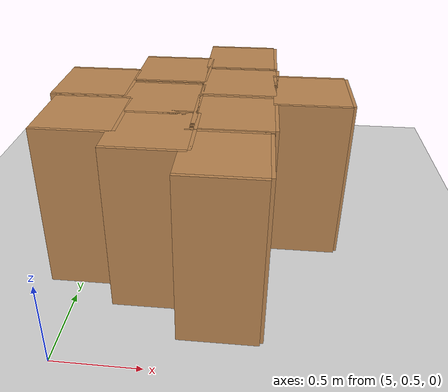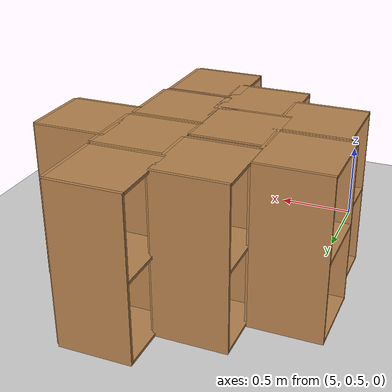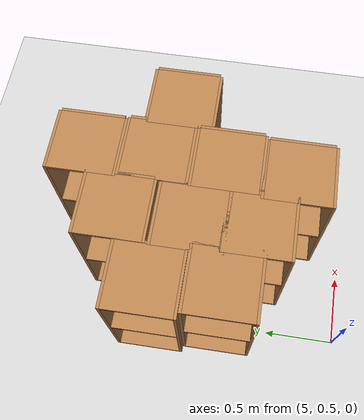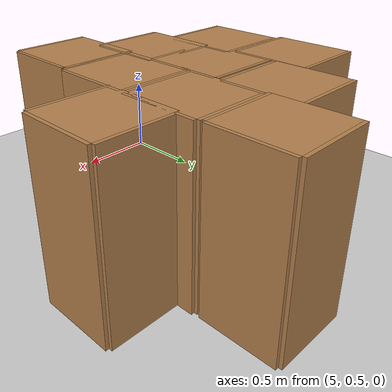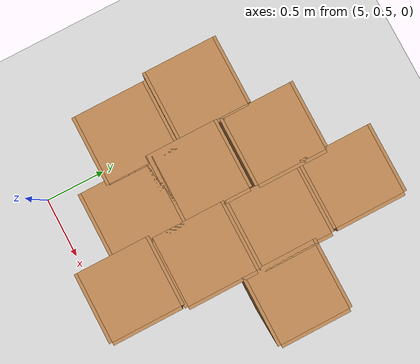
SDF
<sdf version="1.6">
 <world name="default">
  <light name="sun" type="directional">
   <pose>0 0 10 0 -0 0</pose>
   <diffuse>0.8 0.8 0.8 1</diffuse>
   <specular>0.2 0.2 0.2 1</specular>
   <attenuation>
    <range>1000</range>
    <constant>0.9</constant>
    <linear>0.01</linear>
    <quadratic>0.001</quadratic>
   </attenuation>
   <direction>-0.5 0.1 -0.9</direction>
  </light>
  <model name="ground_plane">
   <static>1</static>
   <link name="link">
    <collision name="collision">
     <geometry><plane><normal>0 0 1</normal><size>100 100</size></plane></geometry>
     <surface><friction><ode><mu>100</mu><mu2>50</mu2></ode></friction></surface>
    </collision>
    <visual name="visual">
     <cast_shadows>0</cast_shadows>
     <geometry><plane><normal>0 0 1</normal><size>100 100</size></plane></geometry>
     <material>
      <script><uri>file://media/materials/scripts/gazebo.material</uri><name>Gazebo/Grey</name></script>
     </material>
    </visual>
   </link>
  </model>
  <gravity>0 0 -9.8</gravity>
  <magnetic_field>6e-06 2.3e-05 -4.2e-05</magnetic_field>
  <atmosphere type="adiabatic"/>
  <physics name="default_physics" default="0" type="ode">
   <max_step_size>0.001</max_step_size>
   <real_time_factor>1</real_time_factor>
   <real_time_update_rate>1000</real_time_update_rate>
  </physics>
  <scene><ambient>0.4 0.4 0.4 1</ambient><background>0.7 0.7 0.7 1</background><shadows>1</shadows></scene>
  <audio><device>default</device></audio>
  <spherical_coordinates>
   <surface_model>EARTH_WGS84</surface_model>
   <latitude_deg>0</latitude_deg>
   <longitude_deg>0</longitude_deg>
   <elevation>0</elevation>
   <heading_deg>0</heading_deg>
  </spherical_coordinates>
  <model name="cabinet">
   <static>1</static>
   <link name="cabinet_bottom_plate">
    <inertial>
     <pose>0 0 -1 0 -0 0</pose>
     <inertia><ixx>2.05</ixx><ixy>0</ixy><ixz>0</ixz><iyy>2.05</iyy><iyz>0</iyz><izz>2.05</izz></inertia>
     <mass>25</mass>
    </inertial>
    <collision name="cabinet_bottom_plate_geom">
     <pose>0 0 0.01 0 -0 0</pose>
     <geometry><box><size>0.45 0.45 0.02</size></box></geometry>
    </collision>
    <visual name="cabinet_bottom_plate_geom_visual">
     <pose>0 0 0.01 0 -0 0</pose>
     <geometry><box><size>0.45 0.45 0.02</size></box></geometry>
     <material>
      <script><uri>file://media/materials/scripts/gazebo.material</uri><name>Gazebo/Wood</name></script>
     </material>
    </visual>
    <collision name="cabinet_bottom_plate_geom_cabinet_back_plate">
     <pose>0.235 0 0.51 0 -0 0</pose>
     <geometry><box><size>0.02 0.45 1.02</size></box></geometry>
    </collision>
    <visual name="cabinet_bottom_plate_geom_cabinet_back_plate_visual">
     <pose>0.235 0 0.51 0 -0 0</pose>
     <geometry><box><size>0.02 0.45 1.02</size></box></geometry>
     <material>
      <script><uri>file://media/materials/scripts/gazebo.material</uri><name>Gazebo/Wood</name></script>
     </material>
    </visual>
    <collision name="cabinet_bottom_plate_geom_cabinet_left_plate">
     <pose>0 0.235 0.51 0 -0 0</pose>
     <geometry><box><size>0.45 0.02 1.02</size></box></geometry>
    </collision>
    <visual name="cabinet_bottom_plate_geom_cabinet_left_plate_visual">
     <pose>0 0.235 0.51 0 -0 0</pose>
     <geometry><box><size>0.45 0.02 1.02</size></box></geometry>
     <material>
      <script><uri>file://media/materials/scripts/gazebo.material</uri><name>Gazebo/Wood</name></script>
     </material>
    </visual>
    <collision name="cabinet_bottom_plate_geom_cabinet_middle_plate">
     <pose>0 0 0.51 0 -0 0</pose>
     <geometry><box><size>0.45 0.45 0.02</size></box></geometry>
    </collision>
    <visual name="cabinet_bottom_plate_geom_cabinet_middle_plate_visual">
     <pose>0 0 0.51 0 -0 0</pose>
     <geometry><box><size>0.45 0.45 0.02</size></box></geometry>
     <material>
      <script><uri>file://media/materials/scripts/gazebo.material</uri><name>Gazebo/Wood</name></script>
     </material>
    </visual>
    <collision name="cabinet_bottom_plate_geom_cabinet_right_plate">
     <pose>0 -0.235 0.51 0 -0 0</pose>
     <geometry><box><size>0.45 0.02 1.02</size></box></geometry>
    </collision>
    <visual name="cabinet_bottom_plate_geom_cabinet_right_plate_visual">
     <pose>0 -0.235 0.51 0 -0 0</pose>
     <geometry><box><size>0.45 0.02 1.02</size></box></geometry>
     <material>
      <script><uri>file://media/materials/scripts/gazebo.material</uri><name>Gazebo/Wood</name></script>
     </material>
    </visual>
    <collision name="cabinet_bottom_plate_geom_cabinet_top_plate">
     <pose>0 0 1.01 0 -0 0</pose>
     <geometry><box><size>0.45 0.45 0.02</size></box></geometry>
    </collision>
    <visual name="cabinet_bottom_plate_geom_cabinet_top_plate_visual">
     <pose>0 0 1.01 0 -0 0</pose>
     <geometry><box><size>0.45 0.45 0.02</size></box></geometry>
     <material>
      <script><uri>file://media/materials/scripts/gazebo.material</uri><name>Gazebo/Wood</name></script>
     </material>
    </visual>
   </link>
   <pose>5.87873 2.41817 0 0 -0 0</pose>
  </model>
  <model name="cabinet_0">
   <static>1</static>
   <link name="cabinet_bottom_plate">
    <inertial>
     <pose>0 0 -1 0 -0 0</pose>
     <inertia><ixx>2.05</ixx><ixy>0</ixy><ixz>0</ixz><iyy>2.05</iyy><iyz>0</iyz><izz>2.05</izz></inertia>
     <mass>25</mass>
    </inertial>
    <collision name="cabinet_bottom_plate_geom">
     <pose>0 0 0.01 0 -0 0</pose>
     <geometry><box><size>0.45 0.45 0.02</size></box></geometry>
    </collision>
    <visual name="cabinet_bottom_plate_geom_visual">
     <pose>0 0 0.01 0 -0 0</pose>
     <geometry><box><size>0.45 0.45 0.02</size></box></geometry>
     <material>
      <script><uri>file://media/materials/scripts/gazebo.material</uri><name>Gazebo/Wood</name></script>
     </material>
    </visual>
    <collision name="cabinet_bottom_plate_geom_cabinet_back_plate">
     <pose>0.235 0 0.51 0 -0 0</pose>
     <geometry><box><size>0.02 0.45 1.02</size></box></geometry>
    </collision>
    <visual name="cabinet_bottom_plate_geom_cabinet_back_plate_visual">
     <pose>0.235 0 0.51 0 -0 0</pose>
     <geometry><box><size>0.02 0.45 1.02</size></box></geometry>
     <material>
      <script><uri>file://media/materials/scripts/gazebo.material</uri><name>Gazebo/Wood</name></script>
     </material>
    </visual>
    <collision name="cabinet_bottom_plate_geom_cabinet_left_plate">
     <pose>0 0.235 0.51 0 -0 0</pose>
     <geometry><box><size>0.45 0.02 1.02</size></box></geometry>
    </collision>
    <visual name="cabinet_bottom_plate_geom_cabinet_left_plate_visual">
     <pose>0 0.235 0.51 0 -0 0</pose>
     <geometry><box><size>0.45 0.02 1.02</size></box></geometry>
     <material>
      <script><uri>file://media/materials/scripts/gazebo.material</uri><name>Gazebo/Wood</name></script>
     </material>
    </visual>
    <collision name="cabinet_bottom_plate_geom_cabinet_middle_plate">
     <pose>0 0 0.51 0 -0 0</pose>
     <geometry><box><size>0.45 0.45 0.02</size></box></geometry>
    </collision>
    <visual name="cabinet_bottom_plate_geom_cabinet_middle_plate_visual">
     <pose>0 0 0.51 0 -0 0</pose>
     <geometry><box><size>0.45 0.45 0.02</size></box></geometry>
     <material>
      <script><uri>file://media/materials/scripts/gazebo.material</uri><name>Gazebo/Wood</name></script>
     </material>
    </visual>
    <collision name="cabinet_bottom_plate_geom_cabinet_right_plate">
     <pose>0 -0.235 0.51 0 -0 0</pose>
     <geometry><box><size>0.45 0.02 1.02</size></box></geometry>
    </collision>
    <visual name="cabinet_bottom_plate_geom_cabinet_right_plate_visual">
     <pose>0 -0.235 0.51 0 -0 0</pose>
     <geometry><box><size>0.45 0.02 1.02</size></box></geometry>
     <material>
      <script><uri>file://media/materials/scripts/gazebo.material</uri><name>Gazebo/Wood</name></script>
     </material>
    </visual>
    <collision name="cabinet_bottom_plate_geom_cabinet_top_plate">
     <pose>0 0 1.01 0 -0 0</pose>
     <geometry><box><size>0.45 0.45 0.02</size></box></geometry>
    </collision>
    <visual name="cabinet_bottom_plate_geom_cabinet_top_plate_visual">
     <pose>0 0 1.01 0 -0 0</pose>
     <geometry><box><size>0.45 0.45 0.02</size></box></geometry>
     <material>
      <script><uri>file://media/materials/scripts/gazebo.material</uri><name>Gazebo/Wood</name></script>
     </material>
    </visual>
   </link>
   <pose>5.89009 1.93042 0 0 -0 0</pose>
  </model>
  <model name="cabinet_1">
   <static>1</static>
   <link name="cabinet_bottom_plate">
    <inertial>
     <pose>0 0 -1 0 -0 0</pose>
     <inertia><ixx>2.05</ixx><ixy>0</ixy><ixz>0</ixz><iyy>2.05</iyy><iyz>0</iyz><izz>2.05</izz></inertia>
     <mass>25</mass>
    </inertial>
    <collision name="cabinet_bottom_plate_geom">
     <pose>0 0 0.01 0 -0 0</pose>
     <geometry><box><size>0.45 0.45 0.02</size></box></geometry>
    </collision>
    <visual name="cabinet_bottom_plate_geom_visual">
     <pose>0 0 0.01 0 -0 0</pose>
     <geometry><box><size>0.45 0.45 0.02</size></box></geometry>
     <material>
      <script><uri>file://media/materials/scripts/gazebo.material</uri><name>Gazebo/Wood</name></script>
     </material>
    </visual>
    <collision name="cabinet_bottom_plate_geom_cabinet_back_plate">
     <pose>0.235 0 0.51 0 -0 0</pose>
     <geometry><box><size>0.02 0.45 1.02</size></box></geometry>
    </collision>
    <visual name="cabinet_bottom_plate_geom_cabinet_back_plate_visual">
     <pose>0.235 0 0.51 0 -0 0</pose>
     <geometry><box><size>0.02 0.45 1.02</size></box></geometry>
     <material>
      <script><uri>file://media/materials/scripts/gazebo.material</uri><name>Gazebo/Wood</name></script>
     </material>
    </visual>
    <collision name="cabinet_bottom_plate_geom_cabinet_left_plate">
     <pose>0 0.235 0.51 0 -0 0</pose>
     <geometry><box><size>0.45 0.02 1.02</size></box></geometry>
    </collision>
    <visual name="cabinet_bottom_plate_geom_cabinet_left_plate_visual">
     <pose>0 0.235 0.51 0 -0 0</pose>
     <geometry><box><size>0.45 0.02 1.02</size></box></geometry>
     <material>
      <script><uri>file://media/materials/scripts/gazebo.material</uri><name>Gazebo/Wood</name></script>
     </material>
    </visual>
    <collision name="cabinet_bottom_plate_geom_cabinet_middle_plate">
     <pose>0 0 0.51 0 -0 0</pose>
     <geometry><box><size>0.45 0.45 0.02</size></box></geometry>
    </collision>
    <visual name="cabinet_bottom_plate_geom_cabinet_middle_plate_visual">
     <pose>0 0 0.51 0 -0 0</pose>
     <geometry><box><size>0.45 0.45 0.02</size></box></geometry>
     <material>
      <script><uri>file://media/materials/scripts/gazebo.material</uri><name>Gazebo/Wood</name></script>
     </material>
    </visual>
    <collision name="cabinet_bottom_plate_geom_cabinet_right_plate">
     <pose>0 -0.235 0.51 0 -0 0</pose>
     <geometry><box><size>0.45 0.02 1.02</size></box></geometry>
    </collision>
    <visual name="cabinet_bottom_plate_geom_cabinet_right_plate_visual">
     <pose>0 -0.235 0.51 0 -0 0</pose>
     <geometry><box><size>0.45 0.02 1.02</size></box></geometry>
     <material>
      <script><uri>file://media/materials/scripts/gazebo.material</uri><name>Gazebo/Wood</name></script>
     </material>
    </visual>
    <collision name="cabinet_bottom_plate_geom_cabinet_top_plate">
     <pose>0 0 1.01 0 -0 0</pose>
     <geometry><box><size>0.45 0.45 0.02</size></box></geometry>
    </collision>
    <visual name="cabinet_bottom_plate_geom_cabinet_top_plate_visual">
     <pose>0 0 1.01 0 -0 0</pose>
     <geometry><box><size>0.45 0.45 0.02</size></box></geometry>
     <material>
      <script><uri>file://media/materials/scripts/gazebo.material</uri><name>Gazebo/Wood</name></script>
     </material>
    </visual>
   </link>
   <pose>5.87973 1.44096 0 0 -0 0</pose>
  </model>
  <model name="cabinet_2">
   <static>1</static>
   <link name="cabinet_bottom_plate">
    <inertial>
     <pose>0 0 -1 0 -0 0</pose>
     <inertia><ixx>2.05</ixx><ixy>0</ixy><ixz>0</ixz><iyy>2.05</iyy><iyz>0</iyz><izz>2.05</izz></inertia>
     <mass>25</mass>
    </inertial>
    <collision name="cabinet_bottom_plate_geom">
     <pose>0 0 0.01 0 -0 0</pose>
     <geometry><box><size>0.45 0.45 0.02</size></box></geometry>
    </collision>
    <visual name="cabinet_bottom_plate_geom_visual">
     <pose>0 0 0.01 0 -0 0</pose>
     <geometry><box><size>0.45 0.45 0.02</size></box></geometry>
     <material>
      <script><uri>file://media/materials/scripts/gazebo.material</uri><name>Gazebo/Wood</name></script>
     </material>
    </visual>
    <collision name="cabinet_bottom_plate_geom_cabinet_back_plate">
     <pose>0.235 0 0.51 0 -0 0</pose>
     <geometry><box><size>0.02 0.45 1.02</size></box></geometry>
    </collision>
    <visual name="cabinet_bottom_plate_geom_cabinet_back_plate_visual">
     <pose>0.235 0 0.51 0 -0 0</pose>
     <geometry><box><size>0.02 0.45 1.02</size></box></geometry>
     <material>
      <script><uri>file://media/materials/scripts/gazebo.material</uri><name>Gazebo/Wood</name></script>
     </material>
    </visual>
    <collision name="cabinet_bottom_plate_geom_cabinet_left_plate">
     <pose>0 0.235 0.51 0 -0 0</pose>
     <geometry><box><size>0.45 0.02 1.02</size></box></geometry>
    </collision>
    <visual name="cabinet_bottom_plate_geom_cabinet_left_plate_visual">
     <pose>0 0.235 0.51 0 -0 0</pose>
     <geometry><box><size>0.45 0.02 1.02</size></box></geometry>
     <material>
      <script><uri>file://media/materials/scripts/gazebo.material</uri><name>Gazebo/Wood</name></script>
     </material>
    </visual>
    <collision name="cabinet_bottom_plate_geom_cabinet_middle_plate">
     <pose>0 0 0.51 0 -0 0</pose>
     <geometry><box><size>0.45 0.45 0.02</size></box></geometry>
    </collision>
    <visual name="cabinet_bottom_plate_geom_cabinet_middle_plate_visual">
     <pose>0 0 0.51 0 -0 0</pose>
     <geometry><box><size>0.45 0.45 0.02</size></box></geometry>
     <material>
      <script><uri>file://media/materials/scripts/gazebo.material</uri><name>Gazebo/Wood</name></script>
     </material>
    </visual>
    <collision name="cabinet_bottom_plate_geom_cabinet_right_plate">
     <pose>0 -0.235 0.51 0 -0 0</pose>
     <geometry><box><size>0.45 0.02 1.02</size></box></geometry>
    </collision>
    <visual name="cabinet_bottom_plate_geom_cabinet_right_plate_visual">
     <pose>0 -0.235 0.51 0 -0 0</pose>
     <geometry><box><size>0.45 0.02 1.02</size></box></geometry>
     <material>
      <script><uri>file://media/materials/scripts/gazebo.material</uri><name>Gazebo/Wood</name></script>
     </material>
    </visual>
    <collision name="cabinet_bottom_plate_geom_cabinet_top_plate">
     <pose>0 0 1.01 0 -0 0</pose>
     <geometry><box><size>0.45 0.45 0.02</size></box></geometry>
    </collision>
    <visual name="cabinet_bottom_plate_geom_cabinet_top_plate_visual">
     <pose>0 0 1.01 0 -0 0</pose>
     <geometry><box><size>0.45 0.45 0.02</size></box></geometry>
     <material>
      <script><uri>file://media/materials/scripts/gazebo.material</uri><name>Gazebo/Wood</name></script>
     </material>
    </visual>
   </link>
   <pose>5.85704 0.95829 0 0 -0 0</pose>
  </model>
  <model name="cabinet_3">
   <static>1</static>
   <link name="cabinet_bottom_plate">
    <inertial>
     <pose>0 0 -1 0 -0 0</pose>
     <inertia><ixx>2.05</ixx><ixy>0</ixy><ixz>0</ixz><iyy>2.05</iyy><iyz>0</iyz><izz>2.05</izz></inertia>
     <mass>25</mass>
    </inertial>
    <collision name="cabinet_bottom_plate_geom">
     <pose>0 0 0.01 0 -0 0</pose>
     <geometry><box><size>0.45 0.45 0.02</size></box></geometry>
    </collision>
    <visual name="cabinet_bottom_plate_geom_visual">
     <pose>0 0 0.01 0 -0 0</pose>
     <geometry><box><size>0.45 0.45 0.02</size></box></geometry>
     <material>
      <script><uri>file://media/materials/scripts/gazebo.material</uri><name>Gazebo/Wood</name></script>
     </material>
    </visual>
    <collision name="cabinet_bottom_plate_geom_cabinet_back_plate">
     <pose>0.235 0 0.51 0 -0 0</pose>
     <geometry><box><size>0.02 0.45 1.02</size></box></geometry>
    </collision>
    <visual name="cabinet_bottom_plate_geom_cabinet_back_plate_visual">
     <pose>0.235 0 0.51 0 -0 0</pose>
     <geometry><box><size>0.02 0.45 1.02</size></box></geometry>
     <material>
      <script><uri>file://media/materials/scripts/gazebo.material</uri><name>Gazebo/Wood</name></script>
     </material>
    </visual>
    <collision name="cabinet_bottom_plate_geom_cabinet_left_plate">
     <pose>0 0.235 0.51 0 -0 0</pose>
     <geometry><box><size>0.45 0.02 1.02</size></box></geometry>
    </collision>
    <visual name="cabinet_bottom_plate_geom_cabinet_left_plate_visual">
     <pose>0 0.235 0.51 0 -0 0</pose>
     <geometry><box><size>0.45 0.02 1.02</size></box></geometry>
     <material>
      <script><uri>file://media/materials/scripts/gazebo.material</uri><name>Gazebo/Wood</name></script>
     </material>
    </visual>
    <collision name="cabinet_bottom_plate_geom_cabinet_middle_plate">
     <pose>0 0 0.51 0 -0 0</pose>
     <geometry><box><size>0.45 0.45 0.02</size></box></geometry>
    </collision>
    <visual name="cabinet_bottom_plate_geom_cabinet_middle_plate_visual">
     <pose>0 0 0.51 0 -0 0</pose>
     <geometry><box><size>0.45 0.45 0.02</size></box></geometry>
     <material>
      <script><uri>file://media/materials/scripts/gazebo.material</uri><name>Gazebo/Wood</name></script>
     </material>
    </visual>
    <collision name="cabinet_bottom_plate_geom_cabinet_right_plate">
     <pose>0 -0.235 0.51 0 -0 0</pose>
     <geometry><box><size>0.45 0.02 1.02</size></box></geometry>
    </collision>
    <visual name="cabinet_bottom_plate_geom_cabinet_right_plate_visual">
     <pose>0 -0.235 0.51 0 -0 0</pose>
     <geometry><box><size>0.45 0.02 1.02</size></box></geometry>
     <material>
      <script><uri>file://media/materials/scripts/gazebo.material</uri><name>Gazebo/Wood</name></script>
     </material>
    </visual>
    <collision name="cabinet_bottom_plate_geom_cabinet_top_plate">
     <pose>0 0 1.01 0 -0 0</pose>
     <geometry><box><size>0.45 0.45 0.02</size></box></geometry>
    </collision>
    <visual name="cabinet_bottom_plate_geom_cabinet_top_plate_visual">
     <pose>0 0 1.01 0 -0 0</pose>
     <geometry><box><size>0.45 0.45 0.02</size></box></geometry>
     <material>
      <script><uri>file://media/materials/scripts/gazebo.material</uri><name>Gazebo/Wood</name></script>
     </material>
    </visual>
   </link>
   <pose>5.4432 2.1332 0 0 -0 0</pose>
  </model>
  <model name="cabinet_4">
   <static>1</static>
   <link name="cabinet_bottom_plate">
    <inertial>
     <pose>0 0 -1 0 -0 0</pose>
     <inertia><ixx>2.05</ixx><ixy>0</ixy><ixz>0</ixz><iyy>2.05</iyy><iyz>0</iyz><izz>2.05</izz></inertia>
     <mass>25</mass>
    </inertial>
    <collision name="cabinet_bottom_plate_geom">
     <pose>0 0 0.01 0 -0 0</pose>
     <geometry><box><size>0.45 0.45 0.02</size></box></geometry>
    </collision>
    <visual name="cabinet_bottom_plate_geom_visual">
     <pose>0 0 0.01 0 -0 0</pose>
     <geometry><box><size>0.45 0.45 0.02</size></box></geometry>
     <material>
      <script><uri>file://media/materials/scripts/gazebo.material</uri><name>Gazebo/Wood</name></script>
     </material>
    </visual>
    <collision name="cabinet_bottom_plate_geom_cabinet_back_plate">
     <pose>0.235 0 0.51 0 -0 0</pose>
     <geometry><box><size>0.02 0.45 1.02</size></box></geometry>
    </collision>
    <visual name="cabinet_bottom_plate_geom_cabinet_back_plate_visual">
     <pose>0.235 0 0.51 0 -0 0</pose>
     <geometry><box><size>0.02 0.45 1.02</size></box></geometry>
     <material>
      <script><uri>file://media/materials/scripts/gazebo.material</uri><name>Gazebo/Wood</name></script>
     </material>
    </visual>
    <collision name="cabinet_bottom_plate_geom_cabinet_left_plate">
     <pose>0 0.235 0.51 0 -0 0</pose>
     <geometry><box><size>0.45 0.02 1.02</size></box></geometry>
    </collision>
    <visual name="cabinet_bottom_plate_geom_cabinet_left_plate_visual">
     <pose>0 0.235 0.51 0 -0 0</pose>
     <geometry><box><size>0.45 0.02 1.02</size></box></geometry>
     <material>
      <script><uri>file://media/materials/scripts/gazebo.material</uri><name>Gazebo/Wood</name></script>
     </material>
    </visual>
    <collision name="cabinet_bottom_plate_geom_cabinet_middle_plate">
     <pose>0 0 0.51 0 -0 0</pose>
     <geometry><box><size>0.45 0.45 0.02</size></box></geometry>
    </collision>
    <visual name="cabinet_bottom_plate_geom_cabinet_middle_plate_visual">
     <pose>0 0 0.51 0 -0 0</pose>
     <geometry><box><size>0.45 0.45 0.02</size></box></geometry>
     <material>
      <script><uri>file://media/materials/scripts/gazebo.material</uri><name>Gazebo/Wood</name></script>
     </material>
    </visual>
    <collision name="cabinet_bottom_plate_geom_cabinet_right_plate">
     <pose>0 -0.235 0.51 0 -0 0</pose>
     <geometry><box><size>0.45 0.02 1.02</size></box></geometry>
    </collision>
    <visual name="cabinet_bottom_plate_geom_cabinet_right_plate_visual">
     <pose>0 -0.235 0.51 0 -0 0</pose>
     <geometry><box><size>0.45 0.02 1.02</size></box></geometry>
     <material>
      <script><uri>file://media/materials/scripts/gazebo.material</uri><name>Gazebo/Wood</name></script>
     </material>
    </visual>
    <collision name="cabinet_bottom_plate_geom_cabinet_top_plate">
     <pose>0 0 1.01 0 -0 0</pose>
     <geometry><box><size>0.45 0.45 0.02</size></box></geometry>
    </collision>
    <visual name="cabinet_bottom_plate_geom_cabinet_top_plate_visual">
     <pose>0 0 1.01 0 -0 0</pose>
     <geometry><box><size>0.45 0.45 0.02</size></box></geometry>
     <material>
      <script><uri>file://media/materials/scripts/gazebo.material</uri><name>Gazebo/Wood</name></script>
     </material>
    </visual>
   </link>
   <pose>5.43503 1.62925 0 0 -0 0</pose>
  </model>
  <model name="cabinet_5">
   <static>1</static>
   <link name="cabinet_bottom_plate">
    <inertial>
     <pose>0 0 -1 0 -0 0</pose>
     <inertia><ixx>2.05</ixx><ixy>0</ixy><ixz>0</ixz><iyy>2.05</iyy><iyz>0</iyz><izz>2.05</izz></inertia>
     <mass>25</mass>
    </inertial>
    <collision name="cabinet_bottom_plate_geom">
     <pose>0 0 0.01 0 -0 0</pose>
     <geometry><box><size>0.45 0.45 0.02</size></box></geometry>
    </collision>
    <visual name="cabinet_bottom_plate_geom_visual">
     <pose>0 0 0.01 0 -0 0</pose>
     <geometry><box><size>0.45 0.45 0.02</size></box></geometry>
     <material>
      <script><uri>file://media/materials/scripts/gazebo.material</uri><name>Gazebo/Wood</name></script>
     </material>
    </visual>
    <collision name="cabinet_bottom_plate_geom_cabinet_back_plate">
     <pose>0.235 0 0.51 0 -0 0</pose>
     <geometry><box><size>0.02 0.45 1.02</size></box></geometry>
    </collision>
    <visual name="cabinet_bottom_plate_geom_cabinet_back_plate_visual">
     <pose>0.235 0 0.51 0 -0 0</pose>
     <geometry><box><size>0.02 0.45 1.02</size></box></geometry>
     <material>
      <script><uri>file://media/materials/scripts/gazebo.material</uri><name>Gazebo/Wood</name></script>
     </material>
    </visual>
    <collision name="cabinet_bottom_plate_geom_cabinet_left_plate">
     <pose>0 0.235 0.51 0 -0 0</pose>
     <geometry><box><size>0.45 0.02 1.02</size></box></geometry>
    </collision>
    <visual name="cabinet_bottom_plate_geom_cabinet_left_plate_visual">
     <pose>0 0.235 0.51 0 -0 0</pose>
     <geometry><box><size>0.45 0.02 1.02</size></box></geometry>
     <material>
      <script><uri>file://media/materials/scripts/gazebo.material</uri><name>Gazebo/Wood</name></script>
     </material>
    </visual>
    <collision name="cabinet_bottom_plate_geom_cabinet_middle_plate">
     <pose>0 0 0.51 0 -0 0</pose>
     <geometry><box><size>0.45 0.45 0.02</size></box></geometry>
    </collision>
    <visual name="cabinet_bottom_plate_geom_cabinet_middle_plate_visual">
     <pose>0 0 0.51 0 -0 0</pose>
     <geometry><box><size>0.45 0.45 0.02</size></box></geometry>
     <material>
      <script><uri>file://media/materials/scripts/gazebo.material</uri><name>Gazebo/Wood</name></script>
     </material>
    </visual>
    <collision name="cabinet_bottom_plate_geom_cabinet_right_plate">
     <pose>0 -0.235 0.51 0 -0 0</pose>
     <geometry><box><size>0.45 0.02 1.02</size></box></geometry>
    </collision>
    <visual name="cabinet_bottom_plate_geom_cabinet_right_plate_visual">
     <pose>0 -0.235 0.51 0 -0 0</pose>
     <geometry><box><size>0.45 0.02 1.02</size></box></geometry>
     <material>
      <script><uri>file://media/materials/scripts/gazebo.material</uri><name>Gazebo/Wood</name></script>
     </material>
    </visual>
    <collision name="cabinet_bottom_plate_geom_cabinet_top_plate">
     <pose>0 0 1.01 0 -0 0</pose>
     <geometry><box><size>0.45 0.45 0.02</size></box></geometry>
    </collision>
    <visual name="cabinet_bottom_plate_geom_cabinet_top_plate_visual">
     <pose>0 0 1.01 0 -0 0</pose>
     <geometry><box><size>0.45 0.45 0.02</size></box></geometry>
     <material>
      <script><uri>file://media/materials/scripts/gazebo.material</uri><name>Gazebo/Wood</name></script>
     </material>
    </visual>
   </link>
   <pose>5.45357 1.19026 0 0 -0 0</pose>
  </model>
  <model name="cabinet_6">
   <static>1</static>
   <link name="cabinet_bottom_plate">
    <inertial>
     <pose>0 0 -1 0 -0 0</pose>
     <inertia><ixx>2.05</ixx><ixy>0</ixy><ixz>0</ixz><iyy>2.05</iyy><iyz>0</iyz><izz>2.05</izz></inertia>
     <mass>25</mass>
    </inertial>
    <collision name="cabinet_bottom_plate_geom">
     <pose>0 0 0.01 0 -0 0</pose>
     <geometry><box><size>0.45 0.45 0.02</size></box></geometry>
    </collision>
    <visual name="cabinet_bottom_plate_geom_visual">
     <pose>0 0 0.01 0 -0 0</pose>
     <geometry><box><size>0.45 0.45 0.02</size></box></geometry>
     <material>
      <script><uri>file://media/materials/scripts/gazebo.material</uri><name>Gazebo/Wood</name></script>
     </material>
    </visual>
    <collision name="cabinet_bottom_plate_geom_cabinet_back_plate">
     <pose>0.235 0 0.51 0 -0 0</pose>
     <geometry><box><size>0.02 0.45 1.02</size></box></geometry>
    </collision>
    <visual name="cabinet_bottom_plate_geom_cabinet_back_plate_visual">
     <pose>0.235 0 0.51 0 -0 0</pose>
     <geometry><box><size>0.02 0.45 1.02</size></box></geometry>
     <material>
      <script><uri>file://media/materials/scripts/gazebo.material</uri><name>Gazebo/Wood</name></script>
     </material>
    </visual>
    <collision name="cabinet_bottom_plate_geom_cabinet_left_plate">
     <pose>0 0.235 0.51 0 -0 0</pose>
     <geometry><box><size>0.45 0.02 1.02</size></box></geometry>
    </collision>
    <visual name="cabinet_bottom_plate_geom_cabinet_left_plate_visual">
     <pose>0 0.235 0.51 0 -0 0</pose>
     <geometry><box><size>0.45 0.02 1.02</size></box></geometry>
     <material>
      <script><uri>file://media/materials/scripts/gazebo.material</uri><name>Gazebo/Wood</name></script>
     </material>
    </visual>
    <collision name="cabinet_bottom_plate_geom_cabinet_middle_plate">
     <pose>0 0 0.51 0 -0 0</pose>
     <geometry><box><size>0.45 0.45 0.02</size></box></geometry>
    </collision>
    <visual name="cabinet_bottom_plate_geom_cabinet_middle_plate_visual">
     <pose>0 0 0.51 0 -0 0</pose>
     <geometry><box><size>0.45 0.45 0.02</size></box></geometry>
     <material>
      <script><uri>file://media/materials/scripts/gazebo.material</uri><name>Gazebo/Wood</name></script>
     </material>
    </visual>
    <collision name="cabinet_bottom_plate_geom_cabinet_right_plate">
     <pose>0 -0.235 0.51 0 -0 0</pose>
     <geometry><box><size>0.45 0.02 1.02</size></box></geometry>
    </collision>
    <visual name="cabinet_bottom_plate_geom_cabinet_right_plate_visual">
     <pose>0 -0.235 0.51 0 -0 0</pose>
     <geometry><box><size>0.45 0.02 1.02</size></box></geometry>
     <material>
      <script><uri>file://media/materials/scripts/gazebo.material</uri><name>Gazebo/Wood</name></script>
     </material>
    </visual>
    <collision name="cabinet_bottom_plate_geom_cabinet_top_plate">
     <pose>0 0 1.01 0 -0 0</pose>
     <geometry><box><size>0.45 0.45 0.02</size></box></geometry>
    </collision>
    <visual name="cabinet_bottom_plate_geom_cabinet_top_plate_visual">
     <pose>0 0 1.01 0 -0 0</pose>
     <geometry><box><size>0.45 0.45 0.02</size></box></geometry>
     <material>
      <script><uri>file://media/materials/scripts/gazebo.material</uri><name>Gazebo/Wood</name></script>
     </material>
    </visual>
   </link>
   <pose>4.98981 1.85509 0 0 -0 0</pose>
  </model>
  <model name="cabinet_7">
   <static>1</static>
   <link name="cabinet_bottom_plate">
    <inertial>
     <pose>0 0 -1 0 -0 0</pose>
     <inertia><ixx>2.05</ixx><ixy>0</ixy><ixz>0</ixz><iyy>2.05</iyy><iyz>0</iyz><izz>2.05</izz></inertia>
     <mass>25</mass>
    </inertial>
    <collision name="cabinet_bottom_plate_geom">
     <pose>0 0 0.01 0 -0 0</pose>
     <geometry><box><size>0.45 0.45 0.02</size></box></geometry>
    </collision>
    <visual name="cabinet_bottom_plate_geom_visual">
     <pose>0 0 0.01 0 -0 0</pose>
     <geometry><box><size>0.45 0.45 0.02</size></box></geometry>
     <material>
      <script><uri>file://media/materials/scripts/gazebo.material</uri><name>Gazebo/Wood</name></script>
     </material>
    </visual>
    <collision name="cabinet_bottom_plate_geom_cabinet_back_plate">
     <pose>0.235 0 0.51 0 -0 0</pose>
     <geometry><box><size>0.02 0.45 1.02</size></box></geometry>
    </collision>
    <visual name="cabinet_bottom_plate_geom_cabinet_back_plate_visual">
     <pose>0.235 0 0.51 0 -0 0</pose>
     <geometry><box><size>0.02 0.45 1.02</size></box></geometry>
     <material>
      <script><uri>file://media/materials/scripts/gazebo.material</uri><name>Gazebo/Wood</name></script>
     </material>
    </visual>
    <collision name="cabinet_bottom_plate_geom_cabinet_left_plate">
     <pose>0 0.235 0.51 0 -0 0</pose>
     <geometry><box><size>0.45 0.02 1.02</size></box></geometry>
    </collision>
    <visual name="cabinet_bottom_plate_geom_cabinet_left_plate_visual">
     <pose>0 0.235 0.51 0 -0 0</pose>
     <geometry><box><size>0.45 0.02 1.02</size></box></geometry>
     <material>
      <script><uri>file://media/materials/scripts/gazebo.material</uri><name>Gazebo/Wood</name></script>
     </material>
    </visual>
    <collision name="cabinet_bottom_plate_geom_cabinet_middle_plate">
     <pose>0 0 0.51 0 -0 0</pose>
     <geometry><box><size>0.45 0.45 0.02</size></box></geometry>
    </collision>
    <visual name="cabinet_bottom_plate_geom_cabinet_middle_plate_visual">
     <pose>0 0 0.51 0 -0 0</pose>
     <geometry><box><size>0.45 0.45 0.02</size></box></geometry>
     <material>
      <script><uri>file://media/materials/scripts/gazebo.material</uri><name>Gazebo/Wood</name></script>
     </material>
    </visual>
    <collision name="cabinet_bottom_plate_geom_cabinet_right_plate">
     <pose>0 -0.235 0.51 0 -0 0</pose>
     <geometry><box><size>0.45 0.02 1.02</size></box></geometry>
    </collision>
    <visual name="cabinet_bottom_plate_geom_cabinet_right_plate_visual">
     <pose>0 -0.235 0.51 0 -0 0</pose>
     <geometry><box><size>0.45 0.02 1.02</size></box></geometry>
     <material>
      <script><uri>file://media/materials/scripts/gazebo.material</uri><name>Gazebo/Wood</name></script>
     </material>
    </visual>
    <collision name="cabinet_bottom_plate_geom_cabinet_top_plate">
     <pose>0 0 1.01 0 -0 0</pose>
     <geometry><box><size>0.45 0.45 0.02</size></box></geometry>
    </collision>
    <visual name="cabinet_bottom_plate_geom_cabinet_top_plate_visual">
     <pose>0 0 1.01 0 -0 0</pose>
     <geometry><box><size>0.45 0.45 0.02</size></box></geometry>
     <material>
      <script><uri>file://media/materials/scripts/gazebo.material</uri><name>Gazebo/Wood</name></script>
     </material>
    </visual>
   </link>
   <pose>5.03363 1.36363 0 0 -0 0</pose>
  </model>
  <model name="cabinet_8">
   <static>1</static>
   <link name="cabinet_bottom_plate">
    <inertial>
     <pose>0 0 -1 0 -0 0</pose>
     <inertia><ixx>2.05</ixx><ixy>0</ixy><ixz>0</ixz><iyy>2.05</iyy><iyz>0</iyz><izz>2.05</izz></inertia>
     <mass>25</mass>
    </inertial>
    <collision name="cabinet_bottom_plate_geom">
     <pose>0 0 0.01 0 -0 0</pose>
     <geometry><box><size>0.45 0.45 0.02</size></box></geometry>
    </collision>
    <visual name="cabinet_bottom_plate_geom_visual">
     <pose>0 0 0.01 0 -0 0</pose>
     <geometry><box><size>0.45 0.45 0.02</size></box></geometry>
     <material>
      <script><uri>file://media/materials/scripts/gazebo.material</uri><name>Gazebo/Wood</name></script>
     </material>
    </visual>
    <collision name="cabinet_bottom_plate_geom_cabinet_back_plate">
     <pose>0.235 0 0.51 0 -0 0</pose>
     <geometry><box><size>0.02 0.45 1.02</size></box></geometry>
    </collision>
    <visual name="cabinet_bottom_plate_geom_cabinet_back_plate_visual">
     <pose>0.235 0 0.51 0 -0 0</pose>
     <geometry><box><size>0.02 0.45 1.02</size></box></geometry>
     <material>
      <script><uri>file://media/materials/scripts/gazebo.material</uri><name>Gazebo/Wood</name></script>
     </material>
    </visual>
    <collision name="cabinet_bottom_plate_geom_cabinet_left_plate">
     <pose>0 0.235 0.51 0 -0 0</pose>
     <geometry><box><size>0.45 0.02 1.02</size></box></geometry>
    </collision>
    <visual name="cabinet_bottom_plate_geom_cabinet_left_plate_visual">
     <pose>0 0.235 0.51 0 -0 0</pose>
     <geometry><box><size>0.45 0.02 1.02</size></box></geometry>
     <material>
      <script><uri>file://media/materials/scripts/gazebo.material</uri><name>Gazebo/Wood</name></script>
     </material>
    </visual>
    <collision name="cabinet_bottom_plate_geom_cabinet_middle_plate">
     <pose>0 0 0.51 0 -0 0</pose>
     <geometry><box><size>0.45 0.45 0.02</size></box></geometry>
    </collision>
    <visual name="cabinet_bottom_plate_geom_cabinet_middle_plate_visual">
     <pose>0 0 0.51 0 -0 0</pose>
     <geometry><box><size>0.45 0.45 0.02</size></box></geometry>
     <material>
      <script><uri>file://media/materials/scripts/gazebo.material</uri><name>Gazebo/Wood</name></script>
     </material>
    </visual>
    <collision name="cabinet_bottom_plate_geom_cabinet_right_plate">
     <pose>0 -0.235 0.51 0 -0 0</pose>
     <geometry><box><size>0.45 0.02 1.02</size></box></geometry>
    </collision>
    <visual name="cabinet_bottom_plate_geom_cabinet_right_plate_visual">
     <pose>0 -0.235 0.51 0 -0 0</pose>
     <geometry><box><size>0.45 0.02 1.02</size></box></geometry>
     <material>
      <script><uri>file://media/materials/scripts/gazebo.material</uri><name>Gazebo/Wood</name></script>
     </material>
    </visual>
    <collision name="cabinet_bottom_plate_geom_cabinet_top_plate">
     <pose>0 0 1.01 0 -0 0</pose>
     <geometry><box><size>0.45 0.45 0.02</size></box></geometry>
    </collision>
    <visual name="cabinet_bottom_plate_geom_cabinet_top_plate_visual">
     <pose>0 0 1.01 0 -0 0</pose>
     <geometry><box><size>0.45 0.45 0.02</size></box></geometry>
     <material>
      <script><uri>file://media/materials/scripts/gazebo.material</uri><name>Gazebo/Wood</name></script>
     </material>
    </visual>
   </link>
   <pose>6.32287 1.81446 0 0 -0 0</pose>
  </model>
 </world>
</sdf>
